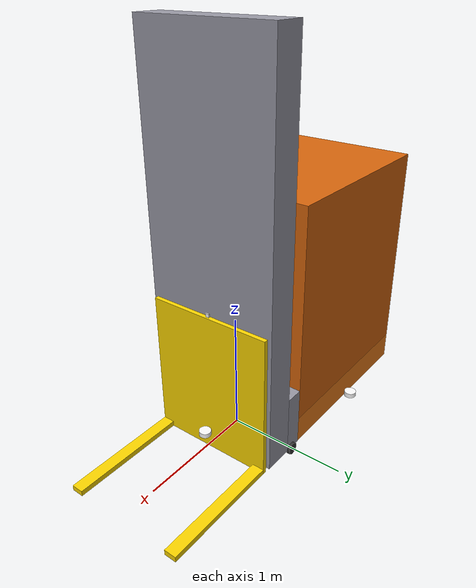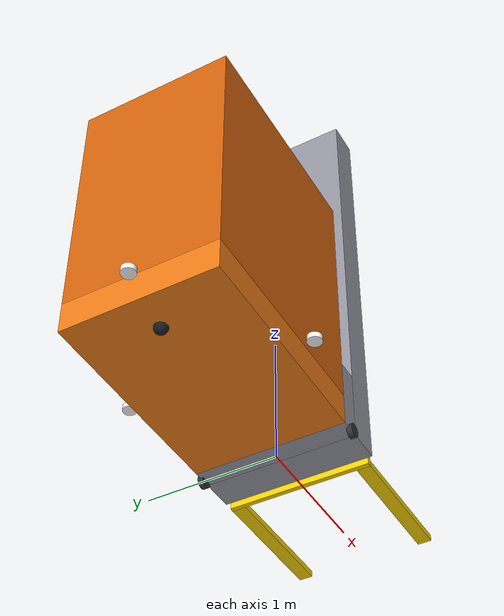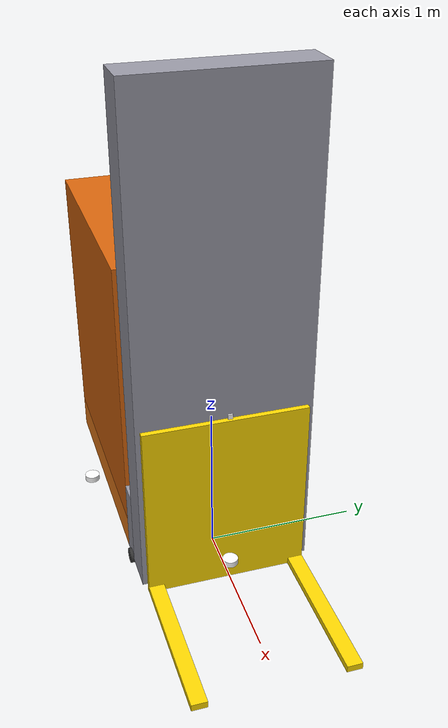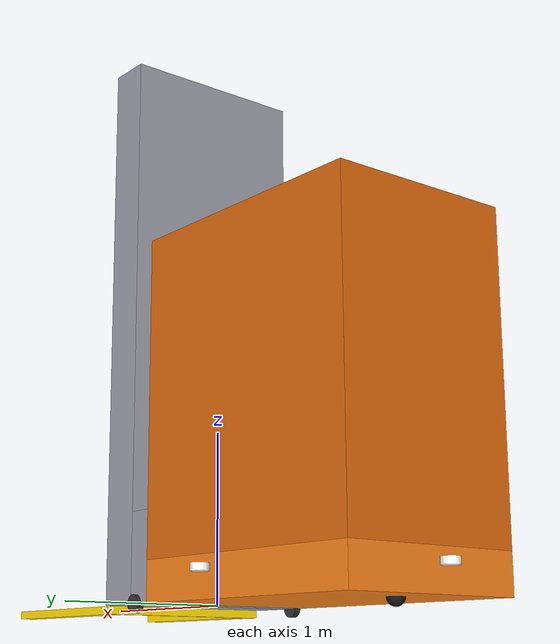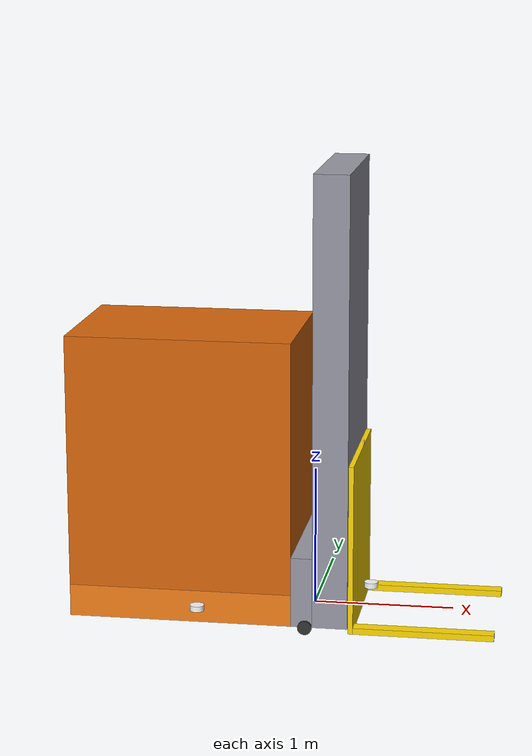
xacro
<?xml version="1.0"?>
<robot xmlns:xacro="http://www.ros.org/wiki/xacro" name="forklift_bot">

    <!-- ==================== PROPERTIES ==================== -->

    <xacro:property name="height_of_chassis_from_ground_plane" value="0.122" />

    <xacro:property name="chassis_bottom_width" value="1.115" />
    <xacro:property name="chassis_bottom_length" value="1.59" />
    <xacro:property name="chassis_bottom_height" value="0.23" />

    <xacro:property name="chassis_top_width" value="1.115" />
    <xacro:property name="chassis_top_length" value="1.59" />
    <xacro:property name="chassis_top_height" value="1.808" />

    <xacro:property name="back_wheel_radius" value="0.05" />
    <xacro:property name="back_wheel_mass" value="0.1" />
    <xacro:property name="back_wheel_length_offset" value="${(chassis_bottom_length / 2) * (2/3)}" />

    <xacro:property name="front_wheel_radius" value="0.05" />
    <xacro:property name="front_wheel_thickness" value="0.04" />
    <xacro:property name="front_wheel_mass" value="0.1" />
    <xacro:property name="front_wheel_length_offset" value="${(chassis_bottom_length / 2)}" />

    <xacro:property name="lift_body_connector_length" value="0.15" />
    <xacro:property name="lift_base_length" value="0.25" />
    <xacro:property name="lift_base_height" value="3.2" />

    <xacro:property name="lift_body_connector_height" value="0.505" />

    <xacro:property name="fork_base_width" value="1.050" />
    <xacro:property name="fork_base_length" value="0.035" />
    <xacro:property name="fork_base_height" value="1.220" />
    <xacro:property name="fork_base_height_offset" value="${height_of_chassis_from_ground_plane - 0.076}" />

    <xacro:property name="fork_length" value="0.99" />
    <xacro:property name="fork_width" value="0.1" />
    <xacro:property name="fork_height" value="0.045" />
    <xacro:property name="fork_separation" value="0.850" />

    <xacro:property name="laser_frame_radius" value="0.05" />
    <xacro:property name="laser_frame_length" value="0.04" />
    <xacro:property name="laser_frame_mass" value="0.01" />

    <xacro:property name="camera_size_x" value="0.010" />
    <xacro:property name="camera_size_y" value="0.03" />
    <xacro:property name="camera_size_z" value="0.03" />

    <xacro:property name="camera_image_width" value="640" />
    <xacro:property name="camera_image_height" value="480" />
    <xacro:property name="camera_image_clip_near" value="0.05" />
    <xacro:property name="camera_image_clip_far" value="8" />

    <!-- ==================== INCLUDES ==================== -->

    <xacro:include filename="inertial_macros.xacro"/>
    <xacro:include filename="sensors.xacro"/>
    <xacro:include filename="gz_ros2_control.xacro"/>

    <!-- ==================== BASE LINK ==================== -->

    <link name="drive_base_link"/>

    <link name="base_link">
        <origin xyz="0 0 0" rpy="0 0 0"/>
    </link>

    <joint name="drive_base_joint" type="fixed">
        <parent link="drive_base_link"/>
        <child link="base_link"/>
        <origin xyz="-${front_wheel_length_offset} 0 0" rpy="0 0 0"/>
    </joint>

    <gazebo>
        <plugin filename="gz-sim-odometry-publisher-system" name="gz::sim::systems::OdometryPublisher">
            <odom_frame>odom</odom_frame>
            <robot_base_frame>drive_base_link</robot_base_frame>
        </plugin>
    </gazebo>

    <!-- base_footprint for Nav2 (projected on ground plane) -->
    <link name="base_footprint"/>
    <joint name="base_footprint_joint" type="fixed">
        <parent link="base_link"/>
        <child link="base_footprint"/>
        <origin xyz="0 0 -${front_wheel_radius}" rpy="0 0 0"/>
    </joint>

    <!-- ==================== CHASSIS ==================== -->

    <joint name="chassis_joint" type="fixed">
        <parent link="base_link"/>
        <child link="chassis_bottom_link"/>
        <origin xyz="-0.1 0 0"/>
    </joint>

    <link name="chassis_bottom_link">
        <visual>
            <origin xyz="0 0 ${chassis_bottom_height / 2}" rpy="0 0 0"/>
            <geometry>
                <box size="${chassis_bottom_length} ${chassis_bottom_width} ${chassis_bottom_height}" />
            </geometry>
            <material name="orange">
                <color rgba="0.95 0.5 0.1 1"/>
            </material>
        </visual>
        <collision name="chassis_bottom_link_collision">
            <origin xyz="0 0 ${chassis_bottom_height / 2}" rpy="0 0 0"/>
            <geometry>
                <box size="${chassis_bottom_length} ${chassis_bottom_width} ${chassis_bottom_height}" />
            </geometry>
        </collision>
        <xacro:inertial_box mass="30" x="${chassis_bottom_length}" y="${chassis_bottom_width}" z="${chassis_bottom_height}">
            <origin xyz="0 0 ${chassis_bottom_height / 2}" rpy="0 0 0"/>
        </xacro:inertial_box>
    </link>

    <joint name="chassis_top_joint" type="fixed">
        <origin xyz="0 0 ${chassis_bottom_height}" rpy="0 0 0"/>
        <parent link="chassis_bottom_link"/>
        <child link="chassis_top_link"/>
    </joint>

    <link name="chassis_top_link">
        <visual>
            <origin xyz="0 0 ${chassis_top_height / 2}" rpy="0 0 0"/>
            <geometry>
                <box size="${chassis_top_length} ${chassis_top_width} ${chassis_top_height}" />
            </geometry>
            <material name="dark_orange">
                <color rgba="0.85 0.4 0.05 1"/>
            </material>
        </visual>
        <collision>
            <origin xyz="0 0 ${chassis_top_height / 2}" rpy="0 0 0"/>
            <geometry>
                <box size="${chassis_top_length} ${chassis_top_width} ${chassis_top_height}" />
            </geometry>
        </collision>
        <xacro:inertial_box mass="5" x="${chassis_top_length}" y="${chassis_top_width}" z="${chassis_top_height}">
            <origin xyz="0 0 ${chassis_top_height / 2}" rpy="0 0 0"/>
        </xacro:inertial_box>
    </link>

    <!-- ==================== DRIVE WHEELS ==================== -->

    <joint name="left_wheel_joint" type="continuous">
        <parent link="drive_base_link"/>
        <child link="left_wheel"/>
        <origin xyz="0 ${(chassis_bottom_width / 2)} 0" rpy="-${pi/2} 0 0" />
        <axis xyz="0 0 1"/>
        <dynamics damping="0.1" friction="0.1"/>
    </joint>

    <link name="left_wheel">
        <visual>
            <geometry>
                <cylinder radius="${front_wheel_radius}" length="${front_wheel_thickness}"/>
            </geometry>
            <material name="dark_grey">
                <color rgba="0.2 0.2 0.2 1"/>
            </material>
        </visual>
        <collision>
            <geometry>
                <cylinder radius="${front_wheel_radius}" length="${front_wheel_thickness}"/>
            </geometry>
        </collision>
        <xacro:inertial_cylinder mass="${front_wheel_mass}" length="${front_wheel_thickness}" radius="${front_wheel_radius}">
            <origin xyz="0 0 0" rpy="0 0 0"/>
        </xacro:inertial_cylinder>
    </link>

    <joint name="right_wheel_joint" type="continuous">
        <parent link="drive_base_link"/>
        <child link="right_wheel"/>
        <origin xyz="0 -${(chassis_bottom_width / 2)} 0" rpy="${pi/2} 0 0" />
        <axis xyz="0 0 -1"/>
        <dynamics damping="0.1" friction="0.1"/>
    </joint>

    <link name="right_wheel">
        <visual>
            <geometry>
                <cylinder radius="${front_wheel_radius}" length="${front_wheel_thickness}"/>
            </geometry>
            <material name="dark_grey">
                <color rgba="0.2 0.2 0.2 1"/>
            </material>
        </visual>
        <collision>
            <geometry>
                <cylinder radius="${front_wheel_radius}" length="${front_wheel_thickness}"/>
            </geometry>
        </collision>
        <xacro:inertial_cylinder mass="${front_wheel_mass}" length="${front_wheel_thickness}" radius="${front_wheel_radius}">
            <origin xyz="0 0 0" rpy="0 0 0"/>
        </xacro:inertial_cylinder>
    </link>

    <!-- Wheel friction for Gazebo Harmonic -->
    <gazebo reference="left_wheel">
        <mu1>1.0</mu1>
        <mu2>1.0</mu2>
        <kp>1000000.0</kp>
        <kd>1.0</kd>
    </gazebo>
    <gazebo reference="right_wheel">
        <mu1>1.0</mu1>
        <mu2>1.0</mu2>
        <kp>1000000.0</kp>
        <kd>1.0</kd>
    </gazebo>

    <!-- ==================== CASTER WHEEL ==================== -->

    <joint name="caster_wheel_joint" type="fixed">
        <parent link="chassis_bottom_link"/>
        <child link="caster_wheel"/>
        <origin xyz="-${back_wheel_length_offset} 0 0" />
    </joint>

    <link name="caster_wheel">
        <visual>
            <geometry>
                <sphere radius="${back_wheel_radius}"/>
            </geometry>
            <material name="black">
                <color rgba="0.1 0.1 0.1 1"/>
            </material>
        </visual>
        <collision>
            <geometry>
                <sphere radius="${back_wheel_radius}"/>
            </geometry>
        </collision>
        <xacro:inertial_sphere mass="${back_wheel_mass}" radius="${back_wheel_radius}">
            <origin xyz="0 0 0" rpy="0 0 0"/>
        </xacro:inertial_sphere>
    </link>

    <!-- Zero-friction caster for free rotation -->
    <gazebo reference="caster_wheel">
        <mu1>0.0</mu1>
        <mu2>0.0</mu2>
        <slip1>1.0</slip1>
        <slip2>1.0</slip2>
        <kp>1000000.0</kp>
        <kd>1.0</kd>
    </gazebo>

    <!-- ==================== LIFT MAST ==================== -->

    <link name="lift_base_link">
        <visual>
            <origin xyz="0 0 ${lift_base_height / 2}" rpy="0 0 0"/>
            <geometry>
                <box size="${lift_base_length} ${chassis_bottom_width} ${lift_base_height}"/>
            </geometry>
            <material name="steel_grey">
                <color rgba="0.6 0.6 0.65 1"/>
            </material>
        </visual>
        <collision>
            <origin xyz="0 0 ${lift_base_height / 2}" rpy="0 0 0"/>
            <geometry>
                <box size="${lift_base_length} ${chassis_bottom_width} ${lift_base_height}"/>
            </geometry>
        </collision>
        <xacro:inertial_box mass="0.001" x="${lift_base_length}" y="${chassis_bottom_width}" z="${lift_base_height}">
            <origin xyz="0 0 ${lift_base_height / 2}" rpy="0 0 0"/>
        </xacro:inertial_box>
    </link>

    <joint name="lift_base_joint" type="fixed">
        <parent link="chassis_bottom_link"/>
        <child link="lift_base_link"/>
        <origin xyz="${(chassis_bottom_length / 2) + lift_body_connector_length + (lift_base_length / 2)} 0 0" rpy="0 0 0" />
    </joint>

    <!-- Connector between chassis and mast -->
    <link name="lift_body_connector_link">
        <visual>
            <origin xyz="0 0 ${(lift_body_connector_height / 2)}" rpy="0 0 0"/>
            <geometry>
                <box size="${lift_body_connector_length} ${chassis_bottom_width} ${lift_body_connector_height}"/>
            </geometry>
            <material name="steel_grey">
                <color rgba="0.6 0.6 0.65 1"/>
            </material>
        </visual>
        <collision>
            <origin xyz="0 0 ${(lift_body_connector_height / 2)}" rpy="0 0 0"/>
            <geometry>
                <box size="${lift_body_connector_length} ${chassis_bottom_width} ${lift_body_connector_height}"/>
            </geometry>
        </collision>
        <xacro:inertial_box mass="0.001" x="${lift_body_connector_length}" y="${chassis_bottom_width}" z="${lift_body_connector_height}">
            <origin xyz="0 0 ${(lift_body_connector_height / 2)}" rpy="0 0 0"/>
        </xacro:inertial_box>
    </link>

    <joint name="lift_body_connector_joint" type="fixed">
        <parent link="chassis_bottom_link"/>
        <child link="lift_body_connector_link"/>
        <origin xyz="${(chassis_bottom_length / 2) + (lift_body_connector_length / 2)} 0 0" rpy="0 0 0" />
    </joint>

    <!-- ==================== FORK CARRIAGE (prismatic - moves up/down) ==================== -->

    <link name="fork_base_link">
        <visual>
            <origin xyz="0 0 ${(fork_base_height / 2)}" rpy="0 0 0"/>
            <geometry>
                <box size="${fork_base_length} ${fork_base_width} ${fork_base_height}"/>
            </geometry>
            <material name="yellow">
                <color rgba="1.0 0.85 0.0 1"/>
            </material>
        </visual>
        <collision>
            <origin xyz="0 0 ${(fork_base_height / 2)}" rpy="0 0 0"/>
            <geometry>
                <box size="${fork_base_length} ${fork_base_width} ${fork_base_height}"/>
            </geometry>
        </collision>
        <xacro:inertial_box mass="0.5" x="${fork_base_length}" y="${fork_base_width}" z="${fork_base_height}">
            <origin xyz="0 0 ${(fork_base_height / 2)}" rpy="0 0 0"/>
        </xacro:inertial_box>
    </link>

    <joint name="fork_base_joint" type="prismatic">
        <parent link="lift_base_link"/>
        <child link="fork_base_link"/>
        <axis xyz="0 0 1"/>
        <limit lower="-${height_of_chassis_from_ground_plane - 0.015}" upper="${lift_base_height + fork_base_height_offset}" velocity="0.5" effort="1000.0"/>
        <origin xyz="${(lift_base_length / 2) + (fork_base_length / 2)} 0 -${fork_base_height_offset}" rpy="0 0 0"/>
        <dynamics damping="50.0" friction="10.0"/>
    </joint>

    <!-- ==================== FORK TINES ==================== -->

    <link name="right_fork_link">
        <visual>
            <origin xyz="0 0 ${(fork_height / 2)}" rpy="0 0 0"/>
            <geometry>
                <box size="${fork_length} ${fork_width} ${fork_height}"/>
            </geometry>
            <material name="yellow">
                <color rgba="1.0 0.85 0.0 1"/>
            </material>
        </visual>
        <collision>
            <origin xyz="0 0 ${(fork_height / 2)}" rpy="0 0 0"/>
            <geometry>
                <box size="${fork_length} ${fork_width} ${fork_height}"/>
            </geometry>
        </collision>
        <xacro:inertial_box mass="0.5" x="${fork_length}" y="${fork_width}" z="${fork_height}">
            <origin xyz="0 0 ${(fork_height / 2)}" rpy="0 0 0"/>
        </xacro:inertial_box>
    </link>

    <joint name="right_fork_joint" type="fixed">
        <parent link="fork_base_link"/>
        <child link="right_fork_link"/>
        <origin xyz="${(fork_base_length / 2) + (fork_length / 2)} ${(fork_separation / 2) + (fork_width / 2)} 0" rpy="0 0 0"/>
    </joint>

    <link name="left_fork_link">
        <visual>
            <origin xyz="0 0 ${(fork_height / 2)}" rpy="0 0 0"/>
            <geometry>
                <box size="${fork_length} ${fork_width} ${fork_height}"/>
            </geometry>
            <material name="yellow">
                <color rgba="1.0 0.85 0.0 1"/>
            </material>
        </visual>
        <collision>
            <origin xyz="0 0 ${(fork_height / 2)}" rpy="0 0 0"/>
            <geometry>
                <box size="${fork_length} ${fork_width} ${fork_height}"/>
            </geometry>
        </collision>
        <xacro:inertial_box mass="0.5" x="${fork_length}" y="${fork_width}" z="${fork_height}">
            <origin xyz="0 0 ${(fork_height / 2)}" rpy="0 0 0"/>
        </xacro:inertial_box>
    </link>

    <joint name="left_fork_joint" type="fixed">
        <parent link="fork_base_link"/>
        <child link="left_fork_link"/>
        <origin xyz="${(fork_base_length / 2) + (fork_length / 2)} -${(fork_separation / 2) + (fork_width / 2)} 0" rpy="0 0 0"/>
    </joint>

</robot>

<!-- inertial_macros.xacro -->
<robot xmlns:xacro="http://www.ros.org/wiki/xacro">

    <xacro:macro name="inertial_sphere" params="mass radius *origin">
        <inertial>
            <xacro:insert_block name="origin"/>
            <mass value="${mass}" />
            <inertia ixx="${(2/5) * mass * (radius*radius)}" ixy="0.0" ixz="0.0"
                    iyy="${(2/5) * mass * (radius*radius)}" iyz="0.0"
                    izz="${(2/5) * mass * (radius*radius)}" />
        </inertial>
    </xacro:macro>

    <xacro:macro name="inertial_box" params="mass x y z *origin">
        <inertial>
            <xacro:insert_block name="origin"/>
            <mass value="${mass}" />
            <inertia ixx="${(1/12) * mass * (y*y+z*z)}" ixy="0.0" ixz="0.0"
                    iyy="${(1/12) * mass * (x*x+z*z)}" iyz="0.0"
                    izz="${(1/12) * mass * (x*x+y*y)}" />
        </inertial>
    </xacro:macro>

    <xacro:macro name="inertial_cylinder" params="mass length radius *origin">
        <inertial>
            <xacro:insert_block name="origin"/>
            <mass value="${mass}" />
            <inertia ixx="${(1/12) * mass * (3*radius*radius + length*length)}" ixy="0.0" ixz="0.0"
                    iyy="${(1/12) * mass * (3*radius*radius + length*length)}" iyz="0.0"
                    izz="${(1/2) * mass * (radius*radius)}" />
        </inertial>
    </xacro:macro>

</robot>

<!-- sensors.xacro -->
<robot xmlns:xacro="http://www.ros.org/wiki/xacro">

    <!-- ==================== LiDAR SENSORS ==================== -->

    <xacro:property name="lidar_mount_height" value="0.15" />
    <xacro:property name="front_lidar_x" value="1.30" />
    <xacro:property name="side_lidar_x" value="0.15" />
    <xacro:property name="side_lidar_y" value="${(chassis_bottom_width / 2) + 0.12}" />
    <xacro:property name="rear_lidar_x" value="${-((chassis_bottom_length / 2) + 0.10)}" />
    <xacro:property name="lidar_fov_half_angle" value="1.0472" />
    <xacro:property name="lidar_samples" value="121" />

    <xacro:macro
        name="planar_lidar_sensor"
        params="link_name joint_name parent x y z yaw topic sensor_name">
        <link name="${link_name}">
            <visual>
                <origin xyz="0 0 0" rpy="0 0 0"/>
                <geometry>
                    <cylinder radius="${laser_frame_radius}" length="${laser_frame_length}"/>
                </geometry>
                <material name="white">
                    <color rgba="1 1 1 1"/>
                </material>
            </visual>
            <xacro:inertial_cylinder
                mass="${laser_frame_mass}"
                length="${laser_frame_length}"
                radius="${laser_frame_radius}">
                <origin xyz="0 0 0" rpy="0 0 0"/>
            </xacro:inertial_cylinder>
        </link>

        <joint name="${joint_name}" type="fixed">
            <parent link="${parent}"/>
            <child link="${link_name}"/>
            <origin xyz="${x} ${y} ${z}" rpy="0 0 ${yaw}" />
        </joint>

        <gazebo reference="${link_name}">
            <sensor name="${sensor_name}" type="gpu_lidar">
                <pose>0 0 0 0 0 0</pose>
                <topic>${topic}</topic>
                <update_rate>10</update_rate>
                <always_on>true</always_on>
                <visualize>true</visualize>
                <gz_frame_id>${link_name}</gz_frame_id>
                <lidar>
                    <scan>
                        <horizontal>
                            <samples>${lidar_samples}</samples>
                            <resolution>1</resolution>
                            <min_angle>-${lidar_fov_half_angle}</min_angle>
                            <max_angle>${lidar_fov_half_angle}</max_angle>
                        </horizontal>
                        <vertical>
                            <samples>1</samples>
                            <resolution>1</resolution>
                            <min_angle>0</min_angle>
                            <max_angle>0</max_angle>
                        </vertical>
                    </scan>
                    <range>
                        <min>0.08</min>
                        <max>24.0</max>
                        <resolution>0.01</resolution>
                    </range>
                </lidar>
            </sensor>
        </gazebo>
    </xacro:macro>

    <!-- Front lidar stays at the successful low-forward mount between the forks. -->
    <xacro:planar_lidar_sensor
        link_name="laser_frame_link"
        joint_name="laser_frame_joint"
        parent="chassis_bottom_link"
        x="${front_lidar_x}"
        y="0"
        z="${lidar_mount_height}"
        yaw="0"
        topic="lidar_front"
        sensor_name="gpu_lidar_front"/>

    <!-- Side lidars are mounted just outside the chassis and point laterally. -->
    <xacro:planar_lidar_sensor
        link_name="laser_left_link"
        joint_name="laser_left_joint"
        parent="chassis_bottom_link"
        x="${side_lidar_x}"
        y="${side_lidar_y}"
        z="${lidar_mount_height}"
        yaw="${pi / 2}"
        topic="lidar_left"
        sensor_name="gpu_lidar_left"/>

    <xacro:planar_lidar_sensor
        link_name="laser_right_link"
        joint_name="laser_right_joint"
        parent="chassis_bottom_link"
        x="${side_lidar_x}"
        y="-${side_lidar_y}"
        z="${lidar_mount_height}"
        yaw="${-pi / 2}"
        topic="lidar_right"
        sensor_name="gpu_lidar_right"/>

    <!-- Rear lidar covers backing and aisle exit alignment. -->
    <xacro:planar_lidar_sensor
        link_name="laser_rear_link"
        joint_name="laser_rear_joint"
        parent="chassis_bottom_link"
        x="${rear_lidar_x}"
        y="0"
        z="${lidar_mount_height}"
        yaw="${pi}"
        topic="lidar_rear"
        sensor_name="gpu_lidar_rear"/>

    <!-- ==================== RGB CAMERA SENSOR ==================== -->

    <link name="camera_link">
        <visual>
            <origin xyz="${camera_size_x / 2} ${camera_size_y / 2} ${camera_size_z / 2}" rpy="0 0 0"/>
            <geometry>
                <box size="${camera_size_x} ${camera_size_y} ${camera_size_z}"/>
            </geometry>
            <material name="white">
                <color rgba="1 1 1 1"/>
            </material>
        </visual>
    </link>

    <joint name="camera_joint" type="fixed">
        <parent link="fork_base_link"/>
        <child link="camera_link"/>
        <origin xyz="${fork_base_length / 2} 0 ${fork_base_height + 0.02}" rpy="0 0 0"/>
    </joint>

    <!-- Optical frame (standard ROS camera convention: Z-forward, X-right, Y-down) -->
    <link name="camera_link_optical"></link>

    <joint name="camera_optical_joint" type="fixed">
        <parent link="camera_link"/>
        <child link="camera_link_optical"/>
        <origin xyz="0 0 0" rpy="${-pi / 2} 0 ${-pi / 2}"/>
    </joint>

    <!-- Gazebo Harmonic camera sensor (publishes on gz-transport, bridged to /camera/image_raw) -->
    <gazebo reference="camera_link">
        <sensor name="camera" type="camera">
            <pose>0 0 0 0 0 0</pose>
            <topic>camera</topic>
            <update_rate>15</update_rate>
            <always_on>true</always_on>
            <visualize>true</visualize>
            <gz_frame_id>camera_link_optical</gz_frame_id>
            <camera>
                <horizontal_fov>1.089</horizontal_fov>
                <image>
                    <width>${camera_image_width}</width>
                    <height>${camera_image_height}</height>
                    <format>R8G8B8</format>
                </image>
                <clip>
                    <near>${camera_image_clip_near}</near>
                    <far>${camera_image_clip_far}</far>
                </clip>
            </camera>
        </sensor>
    </gazebo>

</robot>
